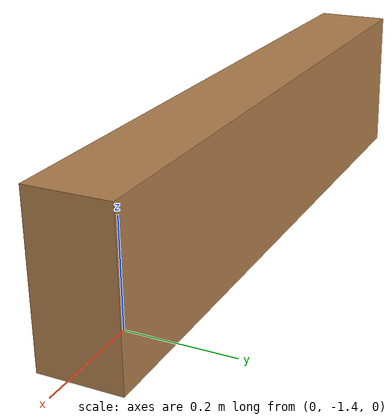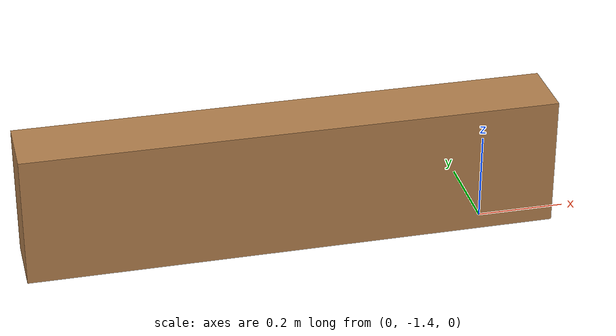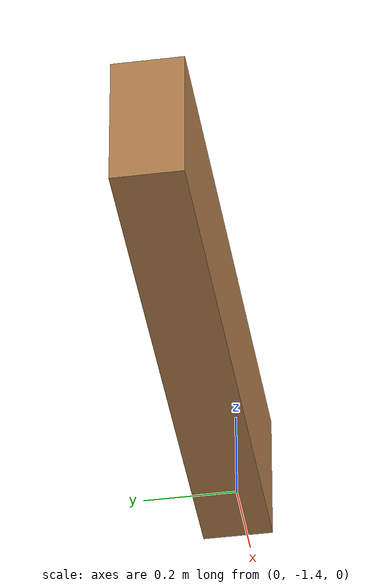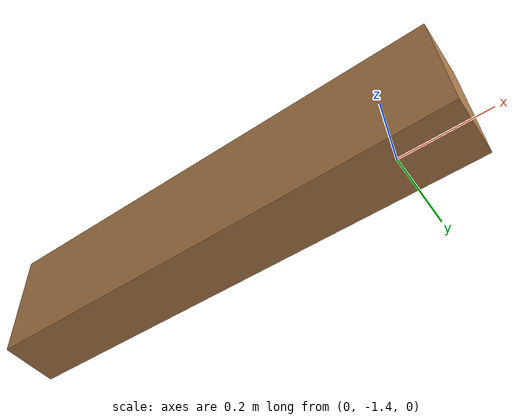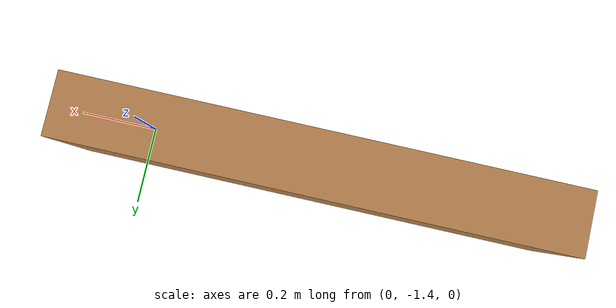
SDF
<?xml version='1.0'?>
<sdf version='1.7'>
  <model name='wall_120cm'>
    <pose>-0.445 -0.7275 0 0 -0 0</pose>
    <link name='Wall_0'>
      <collision name='Wall_0_Collision'>
        <geometry>
          <box>
            <size>1.2 0.15 0.3</size>
          </box>
        </geometry>
        <pose>0 0 0.15 0 -0 0</pose>
      </collision>
      <visual name='Wall_0_Visual'>
        <pose>0 0 0.15 0 -0 0</pose>
        <geometry>
          <box>
            <size>1.2 0.15 0.3</size>
          </box>
        </geometry>
        <material>
          <script>
            <uri>file://media/materials/scripts/gazebo.material</uri>
            <name>Gazebo/Wood</name>
          </script>
          <ambient>1 1 1 1</ambient>
        </material>
        <meta>
          <layer>0</layer>
        </meta>
      </visual>
      <pose>0 -0.6525 0 0 -0 0</pose>
    </link>
    <static>1</static>
  </model>
</sdf>
